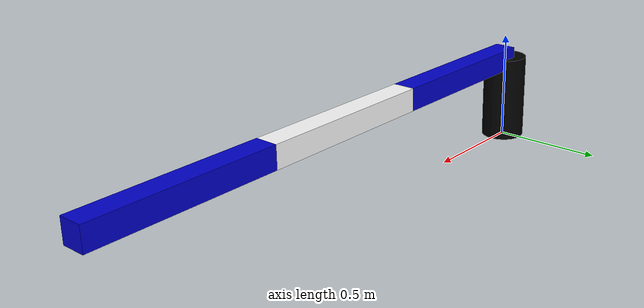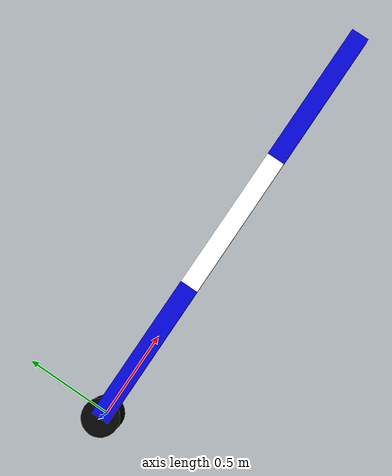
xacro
<?xml version='1.0' encoding='utf-8'?>
<robot xmlns:xacro="http://ros.org/wiki/xacro" name="ModularBot">

    <xacro:property name="width" value="0.1" />

    <xacro:property name="len1" value="0.4" />
    <xacro:property name="len2" value="0.6" />
    <xacro:property name="len3" value="0.8" />
    <xacro:property name="pi" value="3.1415" />

    <material name="blue">
        <color rgba="0 0 0.8 1" />
    </material>

    <material name="black">
        <color rgba="0 0 0 1" />
    </material>

    <material name="white">
        <color rgba="1 1 1 1" />
    </material>

    <xacro:macro name="default_inertial" params="mass">
        <inertial>
        <mass value="${mass}" />
        <inertia ixx="1.0" ixy="0.0" ixz="0.0" iyy="1.0" iyz="0.0" izz="1.0" />
        </inertial>
    </xacro:macro>

    <link name="base_link" />

    <link name="link_0">
        <visual>
            <origin rpy="0 0 0" xyz="0 0 ${len1/2}" />
            <geometry>
                <cylinder length="${len1}" radius="${width}" />
            </geometry>
            <material name="black" />
        </visual>
        <collision>
            <geometry>
                <cylinder length="${len1}" radius="${width}" />
            </geometry>
        </collision>
        <xacro:default_inertial mass="10" />
    </link>

    <joint name="fixed" type="fixed">
        <parent link="base_link" />
        <child link="link_0" />
    </joint>

    <xacro:macro name="add_link" params="suffix length a_i d_i alpha_i theta_i">

        <link name="link_${suffix}">
        <visual>
            <origin rpy="0 0 0" xyz="${length/2} 0 0" />
            <geometry>
            <box size="${length} ${width} ${width}" />
            </geometry>
            <xacro:if value="${suffix%2==0}">
                <material name="white" />
            </xacro:if>
            <xacro:unless value="${suffix%2==0}">
                <material name="blue" />
            </xacro:unless>
        </visual>
        <collision>
            <origin rpy="0 0 0" xyz="${length/2} 0 0" />
            <geometry>
            <box size="${length} ${width} ${width}" />
            </geometry>
        </collision>
        <xacro:default_inertial mass="1" />
        </link>

        <joint name="joint_${suffix-1}_${suffix}" type="continuous">
        <axis rpy="0 0 0" xyz="0 0 1" />

        <parent link="link_${suffix-1}" />

        <child link="link_${suffix}" />
        <origin rpy="${alpha_i} 0 0" xyz="${a_i} 0 ${d_i}" />
        </joint>

    </xacro:macro>

<xacro:add_link a_i="0" alpha_i="0" d_i="${len1}" length="0.8" suffix="1" theta_i="0" /><xacro:add_link a_i="0.8" alpha_i="${-pi/2}" d_i="0" length="0.8" suffix="2" theta_i="0" /><xacro:add_link a_i="0.8" alpha_i="${pi/2}" d_i="0" length="0.8" suffix="3" theta_i="0" /></robot>
